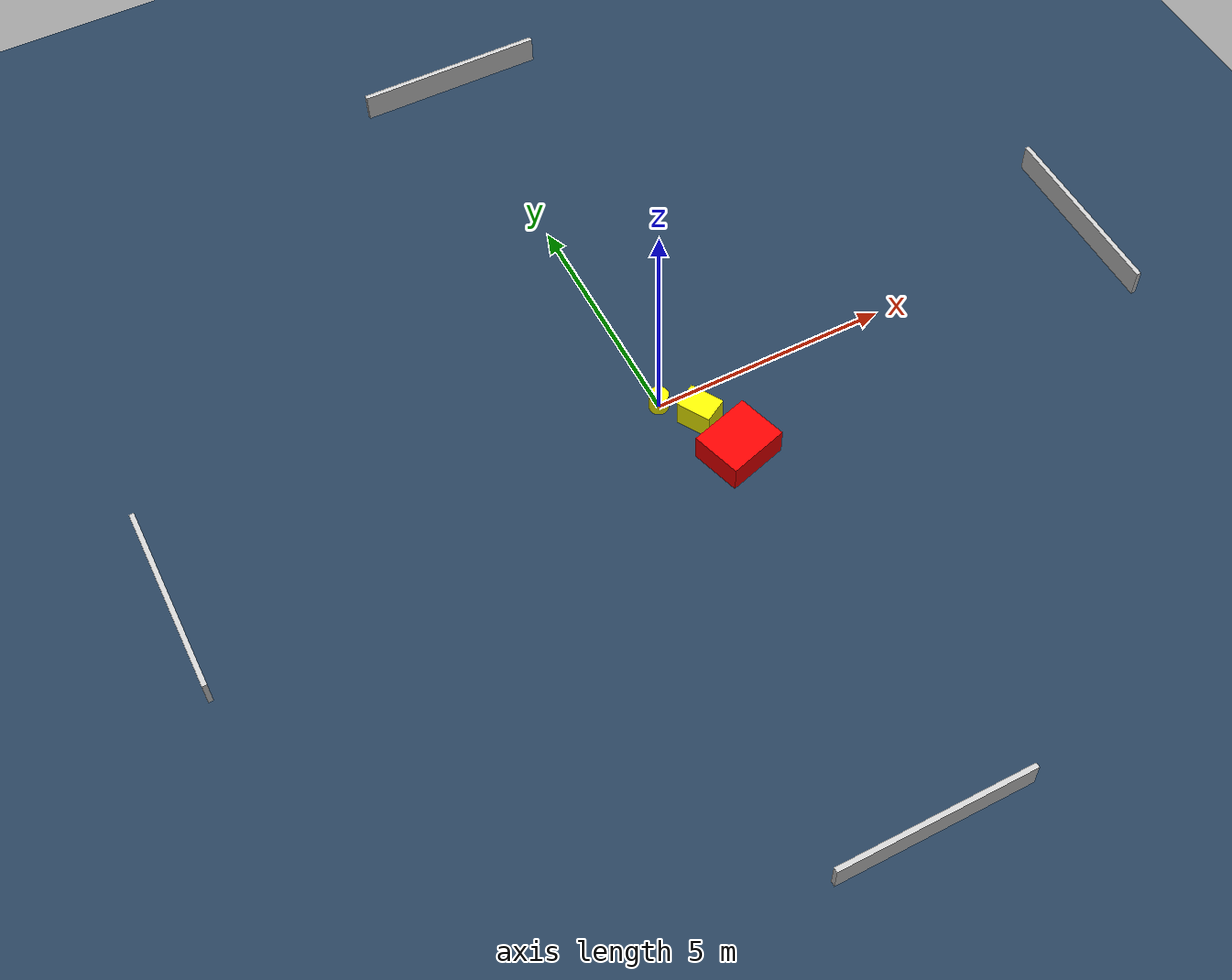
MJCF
<?xml version="1.0" ?>
<mujoco model="generated_environment">
  <option timestep="0.01" integrator="RK4" cone="elliptic"/>
  <default>
    <geom density="1"/>
  </default>
  <asset>
    <texture builtin="gradient" height="3072" name="skybox" rgb1="0.3 0.5 0.7" rgb2="0 0 0" type="skybox" width="512"/>
    <texture builtin="checker" height="300" name="groundplane" rgb1="0.2 0.3 0.4" rgb2="0.1 0.2 0.3" type="2d" width="300"/>
    <material name="groundplane" reflectance="0.2" texrepeat="5 5" texture="groundplane"/>
  </asset>
  <worldbody>
    <light dir="0 0 -1" directional="true" pos="0 0 1.5"/>
    <geom condim="3" friction="0.5 0.005 0.001" material="groundplane" name="floor" pos="0 0 0" size="0 0 0.05" type="plane"/>
    <body name="walls">
      <geom name="wall_1" condim="4" pos="-10.0 0.0 0.3" rgba="0.800000011920929 0.800000011920929 0.800000011920929 1.0" size="0.05 2.0 0.3" type="box"/>
      <geom name="wall_2" condim="4" pos="10.0 0.0 0.3" rgba="0.800000011920929 0.800000011920929 0.800000011920929 1.0" size="0.05 2.0 0.3" type="box"/>
      <geom name="wall_3" condim="4" pos="0.0 -10.0 0.3" rgba="0.800000011920929 0.800000011920929 0.800000011920929 1.0" size="2.0 0.05 0.3" type="box"/>
      <geom name="wall_4" condim="4" pos="0.0 10.0 0.3" rgba="0.800000011920929 0.800000011920929 0.800000011920929 1.0" size="2.0 0.05 0.3" type="box"/>
    </body>
    <body name="robot">
      <joint name="joint_x" type="slide" pos="0 0 0" axis="1 0 0"/>
      <joint name="joint_y" type="slide" pos="0 0 0" axis="0 1 0"/>
      <geom name="robot" type="cylinder" pos="0.0 0.0 0.2" size="0.2 0.2 0.0" mass="5.0" friction="1.0 0.005 0.0001" condim="4" rgba="1.0 1.0 0.0 1.0"/>
    </body>
    <body name="obstacle_1_movable">
      <geom name="obstacle_1_movable" condim="4" pos="0.5518911492857692 -0.6704720950149012 0.3" euler="0 0 300.2808240906875" friction="0.0 0.005 0.001" rgba="1.0 1.0 0.0 1.0" size="0.36012349278815736 0.2673265080631706 0.3" type="box" mass="0.1"/>
      <joint type="free"/>
    </body>
    <body name="obstacle_2_static">
      <geom name="obstacle_2_static" condim="4" pos="0.8401484708919491 -1.699152658455007 0.3" euler="0 0 286.73984459215814" friction="0.0 0.005 0.001" rgba="1.0 0.0 0.0 1.0" size="0.5326468617363087 0.6396598731920773 0.3" type="box"/>
    </body>
  </worldbody>
  <actuator>
    <motor name="actuator_x" joint="joint_x" gear="1" ctrlrange="-1 1"/>
    <motor name="actuator_y" joint="joint_y" gear="1" ctrlrange="-1 1"/>
  </actuator>
</mujoco>
